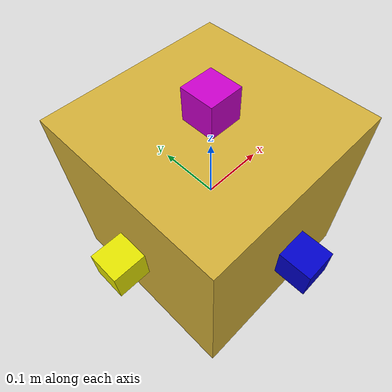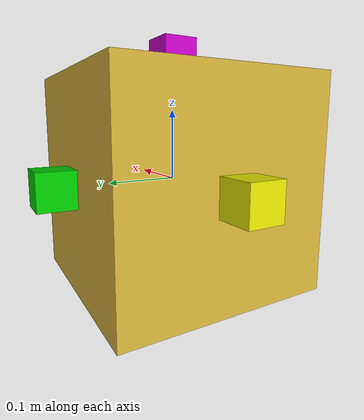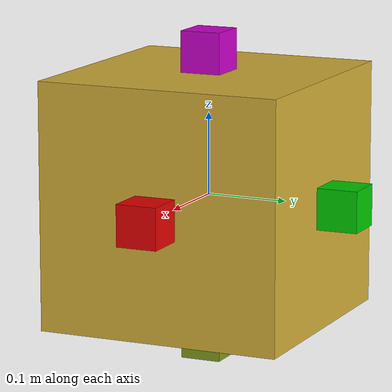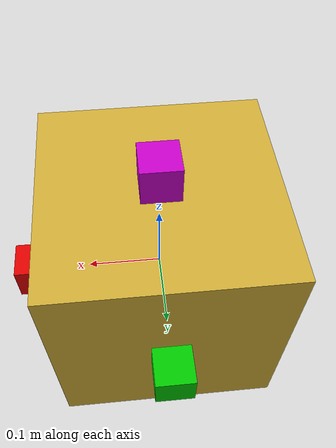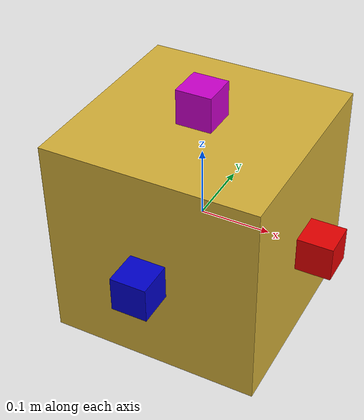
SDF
<sdf version='1.7'>
  <model name='spacecraft'>
    <link name='base_link'>

      <inertial>
        <mass>3.0</mass>
        <inertia>
          <ixx>0.045</ixx>
          <ixy>0.0</ixy>
          <ixz>0.0</ixz>
          <iyy>0.045</iyy>
          <iyz>0.0</iyz>
          <izz>0.045</izz>
        </inertia>
      </inertial>

      <visual name='base_link_visual'>
        <pose>0 0 0 0 -0 0</pose>
        <geometry>
          <box>
            <size>0.3 0.3 0.3</size>
          </box>
        </geometry>
        <material>
          <ambient>0.83 0.69 0.22 1</ambient>
          <diffuse>0.83 0.69 0.22 1</diffuse>
          <specular>0.9 0.9 0.9 1</specular>
          <emissive>0 0 0 1</emissive>
        </material>
      </visual>

      <!-- 🔵 Back Thruster: Blue -->
      <visual name='base_link_fixed_joint_lump__thruster_back_link_visual_1'>
        <pose>0 -0.175 0 0 0 0</pose>
        <geometry>
          <box>
            <size>0.05 0.05 0.05</size>
          </box>
        </geometry>
        <material>
          <ambient>0 0 0.8 1</ambient>
          <diffuse>0 0 0.8 1</diffuse>
        </material>
      </visual>

      <!-- 🟢 Front Thruster: Green -->
      <visual name='base_link_fixed_joint_lump__thruster_front_link_visual_2'>
        <pose>0 0.175 0 0 0 0</pose>
        <geometry>
          <box>
            <size>0.05 0.05 0.05</size>
          </box>
        </geometry>
        <material>
          <ambient>0 0.8 0 1</ambient>
          <diffuse>0 0.8 0 1</diffuse>
        </material>
      </visual>

      <!-- 🟡 Left Thruster: Yellow -->
      <visual name='base_link_fixed_joint_lump__thruster_left_link_visual_3'>
        <pose>-0.175 0 0 0 0 0</pose>
        <geometry>
          <box>
            <size>0.05 0.05 0.05</size>
          </box>
        </geometry>
        <material>
          <ambient>0.9 0.9 0 1</ambient>
          <diffuse>0.9 0.9 0 1</diffuse>
        </material>
      </visual>

      <!-- 🔴 Right Thruster: Red -->
      <visual name='base_link_fixed_joint_lump__thruster_right_link_visual_4'>
        <pose>0.175 0 0 0 0 0</pose>
        <geometry>
          <box>
            <size>0.05 0.05 0.05</size>
          </box>
        </geometry>
        <material>
          <ambient>0.9 0 0 1</ambient>
          <diffuse>0.9 0 0 1</diffuse>
        </material>
      </visual>

      <!--  Top Thruster:  -->
      <visual name='base_link_fixed_joint_lump__thruster_top_link_visual_5'>
        <pose>0 0 0.175 0 0 0</pose>
        <geometry>
          <box>
            <size>0.05 0.05 0.05</size>
          </box>
        </geometry>
        <material>
          <ambient>0.8 0 0.8 1</ambient>
          <diffuse>0.8 0 0.8 1</diffuse>
        </material>
      </visual>

      <!--  Bottom Thruster:  -->
      <visual name='base_link_fixed_joint_lump__thruster_bottom_link_visual_6'>
        <pose>0 0 -0.175 0 0 0</pose>
        <geometry>
          <box>
            <size>0.05 0.05 0.05</size>
          </box>
        </geometry>
        <material>
          <ambient>0.5 0.6 0.1 1</ambient>
          <diffuse>0.5 0.6 0.1 1</diffuse>
        </material>
      </visual>

      <visual name='cone_visual_xp_yp'>
        <pose>0 0 0 0 0 -1.5707</pose>
        <geometry>
          <cylinder>
            <radius>0.03</radius>
            <length>0.2</length>
          </cylinder>
        </geometry>
        <material>
          <ambient>1 0 0 1</ambient>
          <diffuse>1 0 0 0.5</diffuse>
          <emissive>1 0 0 1</emissive>
          <transparency>0</transparency>
        </material>
      </visual>

      <visual name='cone_visual_xp_ym'>
        <pose>0 0 0 0 0 -1.5707</pose>
        <geometry>
          <cylinder>
            <radius>0.03</radius>
            <length>0.2</length>
          </cylinder>
        </geometry>
        <material>
          <ambient>1 0 0 1</ambient>
          <diffuse>1 0 0 0.5</diffuse>
          <emissive>1 0 0 1</emissive>
          <transparency>0</transparency>
        </material>
      </visual>

      <visual name='cone_visual_xp_zp'>
        <pose>0 0 0 0 0 -1.5707</pose>
        <geometry>
          <cylinder>
            <radius>0.03</radius>
            <length>0.2</length>
          </cylinder>
        </geometry>
        <material>
          <ambient>1 0 0 1</ambient>
          <diffuse>1 0 0 0.5</diffuse>
          <emissive>1 0 0 1</emissive>
          <transparency>0</transparency>
        </material>
      </visual>

      <visual name='cone_visual_xp_zm'>
        <pose>0 0 0 0 0 -1.5707</pose>
        <geometry>
          <cylinder>
            <radius>0.03</radius>
            <length>0.2</length>
          </cylinder>
        </geometry>
        <material>
          <ambient>1 0 0 1</ambient>
          <diffuse>1 0 0 0.5</diffuse>
          <emissive>1 0 0 1</emissive>
          <transparency>0</transparency>
        </material>
      </visual>

      <visual name='cone_visual_xm_yp'>
        <pose>0 0 0 0 0 -1.5707</pose>
        <geometry>
          <cylinder>
            <radius>0.03</radius>
            <length>0.2</length>
          </cylinder>
        </geometry>
        <material>
          <ambient>1 0 0 1</ambient>
          <diffuse>1 0 0 0.5</diffuse>
          <emissive>1 0 0 1</emissive>
          <transparency>0</transparency>
        </material>
      </visual>

      <visual name='cone_visual_xm_ym'>
        <pose>0 0 0 0 0 -1.5707</pose>
        <geometry>
          <cylinder>
            <radius>0.03</radius>
            <length>0.2</length>
          </cylinder>
        </geometry>
        <material>
          <ambient>1 0 0 1</ambient>
          <diffuse>1 0 0 0.5</diffuse>
          <emissive>1 0 0 1</emissive>
          <transparency>0</transparency>
        </material>
      </visual>

      <visual name='cone_visual_xm_zp'>
        <pose>0 0 0 0 0 -1.5707</pose>
        <geometry>
          <cylinder>
            <radius>0.03</radius>
            <length>0.2</length>
          </cylinder>
        </geometry>
        <material>
          <ambient>1 0 0 1</ambient>
          <diffuse>1 0 0 0.5</diffuse>
          <emissive>1 0 0 1</emissive>
          <transparency>0</transparency>
        </material>
      </visual>

      <visual name='cone_visual_xm_zm'>
        <pose>0 0 0 0 0 -1.5707</pose>
        <geometry>
          <cylinder>
            <radius>0.03</radius>
            <length>0.2</length>
          </cylinder>
        </geometry>
        <material>
          <ambient>1 0 0 1</ambient>
          <diffuse>1 0 0 0.5</diffuse>
          <emissive>1 0 0 1</emissive>
          <transparency>0</transparency>
        </material>
      </visual>

      <visual name='cone_visual_yp_xp'>
        <pose>0 0 0 0 0 -1.5707</pose>
        <geometry>
          <cylinder>
            <radius>0.03</radius>
            <length>0.2</length>
          </cylinder>
        </geometry>
        <material>
          <ambient>1 0 0 1</ambient>
          <diffuse>1 0 0 0.5</diffuse>
          <emissive>1 0 0 1</emissive>
          <transparency>0</transparency>
        </material>
      </visual>

      <visual name='cone_visual_yp_xm'>
        <pose>0 0 0 0 0 -1.5707</pose>
        <geometry>
          <cylinder>
            <radius>0.03</radius>
            <length>0.2</length>
          </cylinder>
        </geometry>
        <material>
          <ambient>1 0 0 1</ambient>
          <diffuse>1 0 0 0.5</diffuse>
          <emissive>1 0 0 1</emissive>
          <transparency>0</transparency>
        </material>
      </visual>

      <visual name='cone_visual_yp_zp'>
        <pose>0 0 0 0 0 -1.5707</pose>
        <geometry>
          <cylinder>
            <radius>0.03</radius>
            <length>0.2</length>
          </cylinder>
        </geometry>
        <material>
          <ambient>1 0 0 1</ambient>
          <diffuse>1 0 0 0.5</diffuse>
          <emissive>1 0 0 1</emissive>
          <transparency>0</transparency>
        </material>
      </visual>

      <visual name='cone_visual_yp_zm'>
        <pose>0 0 0 0 0 -1.5707</pose>
        <geometry>
          <cylinder>
            <radius>0.03</radius>
            <length>0.2</length>
          </cylinder>
        </geometry>
        <material>
          <ambient>1 0 0 1</ambient>
          <diffuse>1 0 0 0.5</diffuse>
          <emissive>1 0 0 1</emissive>
          <transparency>0</transparency>
        </material>
      </visual>

      <visual name='cone_visual_ym_xp'>
        <pose>0 0 0 0 0 -1.5707</pose>
        <geometry>
          <cylinder>
            <radius>0.03</radius>
            <length>0.2</length>
          </cylinder>
        </geometry>
        <material>
          <ambient>1 0 0 1</ambient>
          <diffuse>1 0 0 0.5</diffuse>
          <emissive>1 0 0 1</emissive>
          <transparency>0</transparency>
        </material>
      </visual>

     <visual name='cone_visual_ym_xm'>
        <pose>0 0 0 0 0 -1.5707</pose>
        <geometry>
          <cylinder>
            <radius>0.03</radius>
            <length>0.2</length>
          </cylinder>
        </geometry>
        <material>
          <ambient>1 0 0 1</ambient>
          <diffuse>1 0 0 0.5</diffuse>
          <emissive>1 0 0 1</emissive>
          <transparency>0</transparency>
        </material>
      </visual>

      <visual name='cone_visual_ym_zp'>
        <pose>0 0 0 0 0 -1.5707</pose>
        <geometry>
          <cylinder>
            <radius>0.03</radius>
            <length>0.2</length>
          </cylinder>
        </geometry>
        <material>
          <ambient>1 0 0 1</ambient>
          <diffuse>1 0 0 0.5</diffuse>
          <emissive>1 0 0 1</emissive>
          <transparency>0</transparency>
        </material>
      </visual>

     <visual name='cone_visual_ym_zm'>
        <pose>0 0 0 0 0 -1.5707</pose>
        <geometry>
          <cylinder>
            <radius>0.03</radius>
            <length>0.2</length>
          </cylinder>
        </geometry>
        <material>
          <ambient>1 0 0 1</ambient>
          <diffuse>1 0 0 0.5</diffuse>
          <emissive>1 0 0 1</emissive>
          <transparency>0</transparency>
        </material>
      </visual>

     <visual name='cone_visual_zp_xp'>
        <pose>0 0 0 1.5707 0 0</pose>
        <geometry>
          <cylinder>
            <radius>0.03</radius>
            <length>0.2</length>
          </cylinder>
        </geometry>
        <material>
          <ambient>1 0 0 1</ambient>
          <diffuse>1 0 0 0.5</diffuse>
          <emissive>1 0 0 1</emissive>
          <transparency>0</transparency>
        </material>
      </visual>

      <visual name='cone_visual_zp_xm'>
        <pose>0 0 0 -1.5707 0 0</pose>
        <geometry>
          <cylinder>
            <radius>0.03</radius>
            <length>0.2</length>
          </cylinder>
        </geometry>
        <material>
          <ambient>1 0 0 1</ambient>
          <diffuse>1 0 0 0.5</diffuse>
          <emissive>1 0 0 1</emissive>
          <transparency>0</transparency>
        </material>
      </visual>

      <visual name='cone_visual_zp_yp'>
        <pose>0 0 0 0 1.5707 0</pose>
        <geometry>
          <cylinder>
            <radius>0.03</radius>
            <length>0.2</length>
          </cylinder>
        </geometry>
        <material>
          <ambient>1 0 0 1</ambient>
          <diffuse>1 0 0 0.5</diffuse>
          <emissive>1 0 0 1</emissive>
          <transparency>0</transparency>
        </material>
      </visual>

      <visual name='cone_visual_zp_ym'>
        <pose>0 0 0 0 -1.5707 0</pose>
        <geometry>
          <cylinder>
            <radius>0.03</radius>
            <length>0.2</length>
          </cylinder>
        </geometry>
        <material>
          <ambient>1 0 0 1</ambient>
          <diffuse>1 0 0 0.5</diffuse>
          <emissive>1 0 0 1</emissive>
          <transparency>0</transparency>
        </material>
      </visual>

     <visual name='cone_visual_zm_xp'>
        <pose>0 0 0 1.5707 0 0</pose>
        <geometry>
          <cylinder>
            <radius>0.03</radius>
            <length>0.2</length>
          </cylinder>
        </geometry>
        <material>
          <ambient>1 0 0 1</ambient>
          <diffuse>1 0 0 0.5</diffuse>
          <emissive>1 0 0 1</emissive>
          <transparency>0</transparency>
        </material>
      </visual>

      <visual name='cone_visual_zm_xm'>
        <pose>0 0 0 -1.5707 0 0</pose>
        <geometry>
          <cylinder>
            <radius>0.03</radius>
            <length>0.2</length>
          </cylinder>
        </geometry>
        <material>
          <ambient>1 0 0 1</ambient>
          <diffuse>1 0 0 0.5</diffuse>
          <emissive>1 0 0 1</emissive>
          <transparency>0</transparency>
        </material>
      </visual>

      <visual name='cone_visual_zm_yp'>
        <pose>0 0 0 0 1.5707 0</pose>
        <geometry>
          <cylinder>
            <radius>0.03</radius>
            <length>0.2</length>
          </cylinder>
        </geometry>
        <material>
          <ambient>1 0 0 1</ambient>
          <diffuse>1 0 0 0.5</diffuse>
          <emissive>1 0 0 1</emissive>
          <transparency>0</transparency>
        </material>
      </visual>

      <visual name='cone_visual_zm_ym'>
        <pose>0 0 0 0 -1.5707 0</pose>
        <geometry>
          <cylinder>
            <radius>0.03</radius>
            <length>0.2</length>
          </cylinder>
        </geometry>
        <material>
          <ambient>1 0 0 1</ambient>
          <diffuse>1 0 0 0.5</diffuse>
          <emissive>1 0 0 1</emissive>
          <transparency>0</transparency>
        </material>
      </visual>

    </link>

    <plugin filename='libapply_force_plugin.so' name='apply_force_plugin_yp_xp'>
        <thruster_name>yp_xp</thruster_name>
        <mounting_point>0 0.1725 0</mounting_point>
        <possible_directions>1 0 0</possible_directions>
        <force>0.5</force>
        <min_duration>0.01</min_duration>
    </plugin>

    <plugin filename='libapply_force_plugin.so' name='apply_force_plugin_yp_xm'>
        <thruster_name>yp_xm</thruster_name>
        <mounting_point>0 0.1725 0</mounting_point>
        <possible_directions>-1 0 0</possible_directions>
        <force>0.5</force>
        <min_duration>0.01</min_duration>
    </plugin>

    <plugin filename='libapply_force_plugin.so' name='apply_force_plugin_yp_zp'>
        <thruster_name>yp_zp</thruster_name>
        <mounting_point>0 0.1725 0</mounting_point>
        <possible_directions>0 0 1</possible_directions>
        <force>0.5</force>
        <min_duration>0.01</min_duration>
    </plugin>

    <plugin filename='libapply_force_plugin.so' name='apply_force_plugin_yp_zm'>
        <thruster_name>yp_zm</thruster_name>
        <mounting_point>0 0.1725 0</mounting_point>
        <possible_directions>0 0 -1</possible_directions>
        <force>0.5</force>
        <min_duration>0.01</min_duration>
    </plugin>

    <plugin filename="libapply_force_plugin.so" name="apply_force_plugin_ym_xp">
      <thruster_name>ym_xp</thruster_name>
      <mounting_point>0 -0.1725 0</mounting_point>  <!-- Opposite of front -->
      <possible_directions>1 0 0</possible_directions> <!-- Opposite X (assuming body-forward is +X) -->
      <force>0.5</force>
      <min_duration>0.01</min_duration>
    </plugin>

    <plugin filename="libapply_force_plugin.so" name="apply_force_plugin_ym_xm">
      <thruster_name>ym_xm</thruster_name>
      <mounting_point>0 -0.1725 0</mounting_point>  <!-- Opposite of front -->
      <possible_directions>-1 0 0</possible_directions> <!-- Opposite X (assuming body-forward is +X) -->
      <force>0.5</force>
      <min_duration>0.01</min_duration>
    </plugin>

    <plugin filename="libapply_force_plugin.so" name="apply_force_plugin_ym_zp">
      <thruster_name>ym_zp</thruster_name>
      <mounting_point>0 -0.1725 0</mounting_point>  <!-- Opposite of front -->
      <possible_directions>0 0 1</possible_directions> <!-- Opposite X (assuming body-forward is +X) -->
      <force>0.5</force>
      <min_duration>0.01</min_duration>
    </plugin>

    <plugin filename="libapply_force_plugin.so" name="apply_force_plugin_ym_zm">
      <thruster_name>ym_zm</thruster_name>
      <mounting_point>0 -0.1725 0</mounting_point>  <!-- Opposite of front -->
      <possible_directions>0 0 -1</possible_directions> <!-- Opposite X (assuming body-forward is +X) -->
      <force>0.5</force>
      <min_duration>0.01</min_duration>
    </plugin>

    <plugin filename="libapply_force_plugin.so" name="apply_force_plugin_xm_yp">
      <thruster_name>xm_yp</thruster_name>
      <mounting_point>-0.1725 0 0</mounting_point>
      <possible_directions>0 1 0</possible_directions>  <!-- Lateral force to the left -->
      <force>0.5</force>
      <min_duration>0.01</min_duration>
    </plugin>

    <plugin filename="libapply_force_plugin.so" name="apply_force_plugin_xm_ym">
      <thruster_name>xm_ym</thruster_name>
      <mounting_point>-0.1725 0 0</mounting_point>
      <possible_directions>0 -1 0</possible_directions>  <!-- Lateral force to the left -->
      <force>0.5</force>
      <min_duration>0.01</min_duration>
    </plugin>

    <plugin filename="libapply_force_plugin.so" name="apply_force_plugin_xm_zp">
      <thruster_name>xm_zp</thruster_name>
      <mounting_point>-0.1725 0 0</mounting_point>
      <possible_directions>0 0 1</possible_directions>  <!-- Lateral force to the left -->
      <force>0.5</force>
      <min_duration>0.01</min_duration>
    </plugin>

    <plugin filename="libapply_force_plugin.so" name="apply_force_plugin_xm_zm">
      <thruster_name>xm_zm</thruster_name>
      <mounting_point>-0.1725 0 0</mounting_point>
      <possible_directions>0 0 -1</possible_directions>  <!-- Lateral force to the left -->
      <force>0.5</force>
      <min_duration>0.01</min_duration>
    </plugin>

    <plugin filename="libapply_force_plugin.so" name="apply_force_plugin_xp_yp">
      <thruster_name>xp_yp</thruster_name>
      <mounting_point>0.1725 0 0</mounting_point>
      <possible_directions>0 1 0</possible_directions> <!-- Lateral force to the right -->
      <force>0.5</force>
      <min_duration>0.01</min_duration>
    </plugin>

    <plugin filename="libapply_force_plugin.so" name="apply_force_plugin_xp_ym">
      <thruster_name>xp_ym</thruster_name>
      <mounting_point>0.1725 0 0</mounting_point>
      <possible_directions>0 -1 0</possible_directions> <!-- Lateral force to the right -->
      <force>0.5</force>
      <min_duration>0.01</min_duration>
    </plugin>

    <plugin filename="libapply_force_plugin.so" name="apply_force_plugin_xp_zp">
      <thruster_name>xp_zp</thruster_name>
      <mounting_point>0.1725 0 0</mounting_point>
      <possible_directions>0 0 1</possible_directions> <!-- Lateral force to the right -->
      <force>0.5</force>
      <min_duration>0.01</min_duration>
    </plugin>

    <plugin filename="libapply_force_plugin.so" name="apply_force_plugin_xp_zm">
      <thruster_name>xp_zm</thruster_name>
      <mounting_point>0.1725 0 0</mounting_point>
      <possible_directions>0 0 -1</possible_directions> <!-- Lateral force to the right -->
      <force>0.5</force>
      <min_duration>0.01</min_duration>
    </plugin>

    <plugin filename="libapply_force_plugin.so" name="apply_force_plugin_zp_xp">
      <thruster_name>zp_xp</thruster_name>
      <mounting_point> 0 0 0.1725</mounting_point>
      <possible_directions>1 0 0</possible_directions> <!-- Lateral force to the right -->
      <force>0.5</force>
      <min_duration>0.01</min_duration>
    </plugin>

    <plugin filename="libapply_force_plugin.so" name="apply_force_plugin_zp_xm">
      <thruster_name>zp_xm</thruster_name>
      <mounting_point> 0 0 0.1725</mounting_point>
      <possible_directions>-1 0 0</possible_directions> <!-- Lateral force to the right -->
      <force>0.5</force>
      <min_duration>0.01</min_duration>
    </plugin>

    <plugin filename="libapply_force_plugin.so" name="apply_force_plugin_zp_yp">
      <thruster_name>zp_yp</thruster_name>
      <mounting_point> 0 0 0.1725</mounting_point>
      <possible_directions>0 1 0</possible_directions> <!-- Lateral force to the right -->
      <force>0.5</force>
      <min_duration>0.01</min_duration>
    </plugin>

    <plugin filename="libapply_force_plugin.so" name="apply_force_plugin_zp_ym">
      <thruster_name>zp_ym</thruster_name>
      <mounting_point> 0 0 0.1725</mounting_point>
      <possible_directions>0 -1 0</possible_directions> <!-- Lateral force to the right -->
      <force>0.5</force>
      <min_duration>0.01</min_duration>
    </plugin>

    <plugin filename="libapply_force_plugin.so" name="apply_force_plugin_zm_xp">
      <thruster_name>zm_xp</thruster_name>
      <mounting_point> 0 0 -0.1725</mounting_point>
      <possible_directions>1 0 0</possible_directions> <!-- Lateral force to the right -->
      <force>0.5</force>
      <min_duration>0.01</min_duration>
    </plugin>

    <plugin filename="libapply_force_plugin.so" name="apply_force_plugin_zm_xm">
      <thruster_name>zm_xm</thruster_name>
      <mounting_point> 0 0 -0.1725</mounting_point>
      <possible_directions>-1 0 0</possible_directions> <!-- Lateral force to the right -->
      <force>0.5</force>
      <min_duration>0.01</min_duration>
    </plugin>

    <plugin filename="libapply_force_plugin.so" name="apply_force_plugin_zm_yp">
      <thruster_name>zm_yp</thruster_name>
      <mounting_point> 0 0 -0.1725</mounting_point>
      <possible_directions>0 1 0</possible_directions> <!-- Lateral force to the right -->
      <force>0.5</force>
      <min_duration>0.01</min_duration>
    </plugin>

    <plugin filename="libapply_force_plugin.so" name="apply_force_plugin_zm_ym">
      <thruster_name>zm_ym</thruster_name>
      <mounting_point> 0 0 -0.1725</mounting_point>
      <possible_directions>0 -1 0</possible_directions> <!-- Lateral force to the right -->
      <force>0.5</force>
      <min_duration>0.01</min_duration>
    </plugin>

    <plugin name="spacecraft_pose_publisher" filename="libgazebo_ros_p3d.so">
      <ros>
        <namespace>spacecraft</namespace>
        <remapping>odom:=state</remapping>
      </ros>
      <body_name>base_link</body_name>
      <frame_name>world</frame_name>
      <update_rate>50.0</update_rate>
    </plugin>

  </model>
</sdf>
